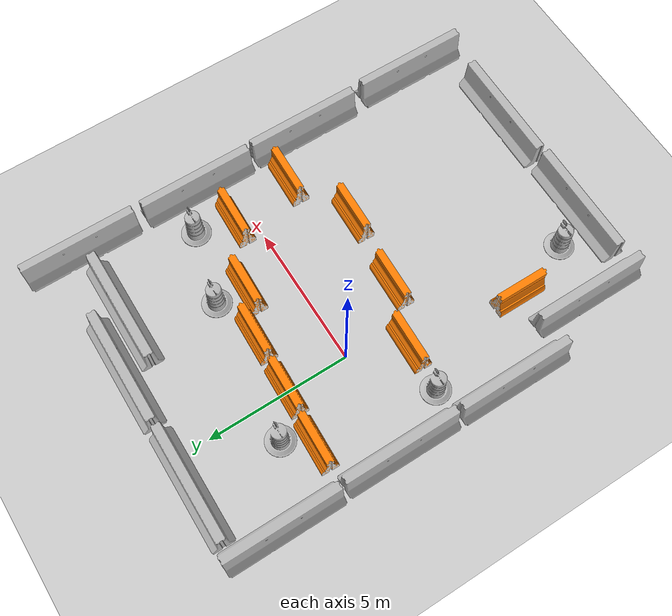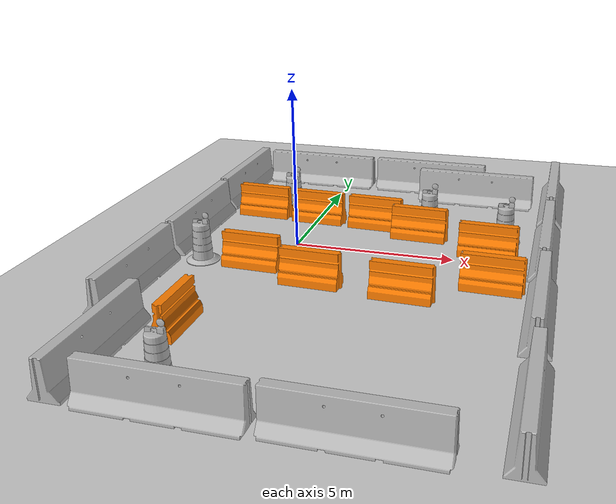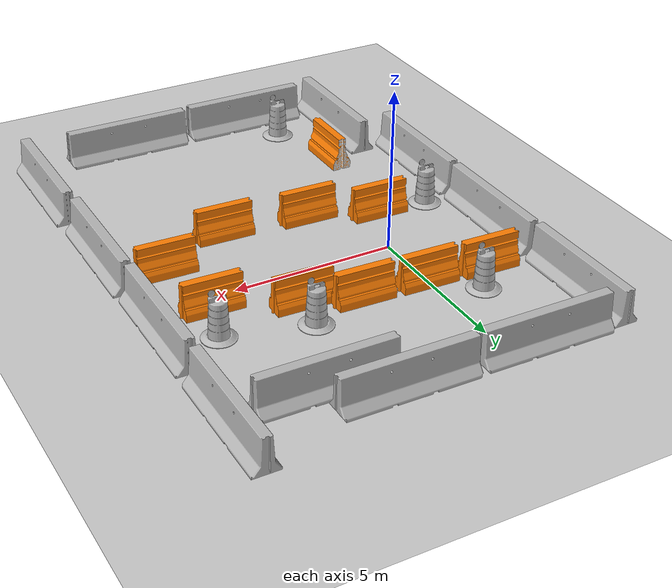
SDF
<sdf version="1.7">
 <world name="default">
  <model name="ground_plane">
   <static>1</static>
   <link name="link">
    <collision name="collision">
     <geometry><plane><normal>0 0 1</normal><size>100 100</size></plane></geometry>
     <surface><friction><ode><mu>100</mu><mu2>50</mu2></ode></friction></surface>
    </collision>
    <visual name="visual">
     <cast_shadows>0</cast_shadows>
     <geometry><plane><normal>0 0 1</normal><size>100 100</size></plane></geometry>
     <material>
      <script><uri>file://media/materials/scripts/gazebo.material</uri><name>Gazebo/Grey</name></script>
     </material>
    </visual>
   </link>
  </model>
  <model name="jersey_barrier">
   <static>1</static>
   <link name="link">
    <visual name="visual">
     <geometry><mesh><uri>model://jersey_barrier/meshes/jersey_barrier.dae</uri></mesh></geometry>
    </visual>
    <collision name="upright">
     <pose>0 0 0.5715 0 -0 0</pose>
     <geometry><box><size>4.06542 0.3063 1.143</size></box></geometry>
    </collision>
    <collision name="base">
     <pose>0 0 0.032258 0 -0 0</pose>
     <geometry><box><size>4.06542 0.8107 0.064516</size></box></geometry>
    </collision>
    <collision name="base2">
     <pose>0 0 0.1 0 -0 0</pose>
     <geometry><box><size>4.06542 0.65 0.1</size></box></geometry>
    </collision>
    <collision name="base3">
     <pose>0 0 0.2 0 -0 0</pose>
     <geometry><box><size>4.06542 0.5 0.1</size></box></geometry>
    </collision>
    <collision name="left-angle">
     <pose>0 -0.224 0.2401 0.9 -0 0</pose>
     <geometry><box><size>4.06542 0.5 0.064516</size></box></geometry>
    </collision>
    <collision name="right-angle">
     <pose>0 0.224 0.2401 -0.9 0 0</pose>
     <geometry><box><size>4.06542 0.5 0.064516</size></box></geometry>
    </collision>
   </link>
   <pose>-3.47167 0.268319 0 0 0 -1.57391</pose>
  </model>
  <model name="jersey_barrier_clone">
   <static>1</static>
   <link name="link">
    <visual name="visual">
     <geometry><mesh><uri>model://jersey_barrier/meshes/jersey_barrier.dae</uri></mesh></geometry>
    </visual>
    <collision name="upright">
     <pose>0 0 0.5715 0 -0 0</pose>
     <geometry><box><size>4.06542 0.3063 1.143</size></box></geometry>
    </collision>
    <collision name="base">
     <pose>0 0 0.032258 0 -0 0</pose>
     <geometry><box><size>4.06542 0.8107 0.064516</size></box></geometry>
    </collision>
    <collision name="base2">
     <pose>0 0 0.1 0 -0 0</pose>
     <geometry><box><size>4.06542 0.65 0.1</size></box></geometry>
    </collision>
    <collision name="base3">
     <pose>0 0 0.2 0 -0 0</pose>
     <geometry><box><size>4.06542 0.5 0.1</size></box></geometry>
    </collision>
    <collision name="left-angle">
     <pose>0 -0.224 0.2401 0.9 -0 0</pose>
     <geometry><box><size>4.06542 0.5 0.064516</size></box></geometry>
    </collision>
    <collision name="right-angle">
     <pose>0 0.224 0.2401 -0.9 0 0</pose>
     <geometry><box><size>4.06542 0.5 0.064516</size></box></geometry>
    </collision>
   </link>
   <pose>-3.51559 4.47458 0 0 0 -1.57391</pose>
  </model>
  <model name="jersey_barrier_clone_clone">
   <static>1</static>
   <link name="link">
    <visual name="visual">
     <geometry><mesh><uri>model://jersey_barrier/meshes/jersey_barrier.dae</uri></mesh></geometry>
    </visual>
    <collision name="upright">
     <pose>0 0 0.5715 0 -0 0</pose>
     <geometry><box><size>4.06542 0.3063 1.143</size></box></geometry>
    </collision>
    <collision name="base">
     <pose>0 0 0.032258 0 -0 0</pose>
     <geometry><box><size>4.06542 0.8107 0.064516</size></box></geometry>
    </collision>
    <collision name="base2">
     <pose>0 0 0.1 0 -0 0</pose>
     <geometry><box><size>4.06542 0.65 0.1</size></box></geometry>
    </collision>
    <collision name="base3">
     <pose>0 0 0.2 0 -0 0</pose>
     <geometry><box><size>4.06542 0.5 0.1</size></box></geometry>
    </collision>
    <collision name="left-angle">
     <pose>0 -0.224 0.2401 0.9 -0 0</pose>
     <geometry><box><size>4.06542 0.5 0.064516</size></box></geometry>
    </collision>
    <collision name="right-angle">
     <pose>0 0.224 0.2401 -0.9 0 0</pose>
     <geometry><box><size>4.06542 0.5 0.064516</size></box></geometry>
    </collision>
   </link>
   <pose>-3.49194 -3.94559 0 0 0 -1.57391</pose>
  </model>
  <model name="jersey_barrier_clone_clone_0">
   <static>1</static>
   <link name="link">
    <visual name="visual">
     <geometry><mesh><uri>model://jersey_barrier/meshes/jersey_barrier.dae</uri></mesh></geometry>
    </visual>
    <collision name="upright">
     <pose>0 0 0.5715 0 -0 0</pose>
     <geometry><box><size>4.06542 0.3063 1.143</size></box></geometry>
    </collision>
    <collision name="base">
     <pose>0 0 0.032258 0 -0 0</pose>
     <geometry><box><size>4.06542 0.8107 0.064516</size></box></geometry>
    </collision>
    <collision name="base2">
     <pose>0 0 0.1 0 -0 0</pose>
     <geometry><box><size>4.06542 0.65 0.1</size></box></geometry>
    </collision>
    <collision name="base3">
     <pose>0 0 0.2 0 -0 0</pose>
     <geometry><box><size>4.06542 0.5 0.1</size></box></geometry>
    </collision>
    <collision name="left-angle">
     <pose>0 -0.224 0.2401 0.9 -0 0</pose>
     <geometry><box><size>4.06542 0.5 0.064516</size></box></geometry>
    </collision>
    <collision name="right-angle">
     <pose>0 0.224 0.2401 -0.9 0 0</pose>
     <geometry><box><size>4.06542 0.5 0.064516</size></box></geometry>
    </collision>
   </link>
   <pose>-1.04259 6.17471 0 0 0 -0.010026</pose>
  </model>
  <model name="jersey_barrier_clone_clone_0_clone">
   <static>1</static>
   <link name="link">
    <visual name="visual">
     <geometry><mesh><uri>model://jersey_barrier/meshes/jersey_barrier.dae</uri></mesh></geometry>
    </visual>
    <collision name="upright">
     <pose>0 0 0.5715 0 -0 0</pose>
     <geometry><box><size>4.06542 0.3063 1.143</size></box></geometry>
    </collision>
    <collision name="base">
     <pose>0 0 0.032258 0 -0 0</pose>
     <geometry><box><size>4.06542 0.8107 0.064516</size></box></geometry>
    </collision>
    <collision name="base2">
     <pose>0 0 0.1 0 -0 0</pose>
     <geometry><box><size>4.06542 0.65 0.1</size></box></geometry>
    </collision>
    <collision name="base3">
     <pose>0 0 0.2 0 -0 0</pose>
     <geometry><box><size>4.06542 0.5 0.1</size></box></geometry>
    </collision>
    <collision name="left-angle">
     <pose>0 -0.224 0.2401 0.9 -0 0</pose>
     <geometry><box><size>4.06542 0.5 0.064516</size></box></geometry>
    </collision>
    <collision name="right-angle">
     <pose>0 0.224 0.2401 -0.9 0 0</pose>
     <geometry><box><size>4.06542 0.5 0.064516</size></box></geometry>
    </collision>
   </link>
   <pose>3.19196 6.17566 0 0 0 -0.010026</pose>
  </model>
  <model name="jersey_barrier_clone_clone_clone">
   <static>1</static>
   <link name="link">
    <visual name="visual">
     <geometry><mesh><uri>model://jersey_barrier/meshes/jersey_barrier.dae</uri></mesh></geometry>
    </visual>
    <collision name="upright">
     <pose>0 0 0.5715 0 -0 0</pose>
     <geometry><box><size>4.06542 0.3063 1.143</size></box></geometry>
    </collision>
    <collision name="base">
     <pose>0 0 0.032258 0 -0 0</pose>
     <geometry><box><size>4.06542 0.8107 0.064516</size></box></geometry>
    </collision>
    <collision name="base2">
     <pose>0 0 0.1 0 -0 0</pose>
     <geometry><box><size>4.06542 0.65 0.1</size></box></geometry>
    </collision>
    <collision name="base3">
     <pose>0 0 0.2 0 -0 0</pose>
     <geometry><box><size>4.06542 0.5 0.1</size></box></geometry>
    </collision>
    <collision name="left-angle">
     <pose>0 -0.224 0.2401 0.9 -0 0</pose>
     <geometry><box><size>4.06542 0.5 0.064516</size></box></geometry>
    </collision>
    <collision name="right-angle">
     <pose>0 0.224 0.2401 -0.9 0 0</pose>
     <geometry><box><size>4.06542 0.5 0.064516</size></box></geometry>
    </collision>
   </link>
   <pose>-2.45373 -7.67188 0 0 0 -1.57391</pose>
  </model>
  <model name="jersey_barrier_clone_clone_0_clone_0">
   <static>1</static>
   <link name="link">
    <visual name="visual">
     <geometry><mesh><uri>model://jersey_barrier/meshes/jersey_barrier.dae</uri></mesh></geometry>
    </visual>
    <collision name="upright">
     <pose>0 0 0.5715 0 -0 0</pose>
     <geometry><box><size>4.06542 0.3063 1.143</size></box></geometry>
    </collision>
    <collision name="base">
     <pose>0 0 0.032258 0 -0 0</pose>
     <geometry><box><size>4.06542 0.8107 0.064516</size></box></geometry>
    </collision>
    <collision name="base2">
     <pose>0 0 0.1 0 -0 0</pose>
     <geometry><box><size>4.06542 0.65 0.1</size></box></geometry>
    </collision>
    <collision name="base3">
     <pose>0 0 0.2 0 -0 0</pose>
     <geometry><box><size>4.06542 0.5 0.1</size></box></geometry>
    </collision>
    <collision name="left-angle">
     <pose>0 -0.224 0.2401 0.9 -0 0</pose>
     <geometry><box><size>4.06542 0.5 0.064516</size></box></geometry>
    </collision>
    <collision name="right-angle">
     <pose>0 0.224 0.2401 -0.9 0 0</pose>
     <geometry><box><size>4.06542 0.5 0.064516</size></box></geometry>
    </collision>
   </link>
   <pose>0.198187 -9.36273 0 0 0 -0.010026</pose>
  </model>
  <model name="jersey_barrier_clone_clone_0_clone_1">
   <static>1</static>
   <link name="link">
    <visual name="visual">
     <geometry><mesh><uri>model://jersey_barrier/meshes/jersey_barrier.dae</uri></mesh></geometry>
    </visual>
    <collision name="upright">
     <pose>0 0 0.5715 0 -0 0</pose>
     <geometry><box><size>4.06542 0.3063 1.143</size></box></geometry>
    </collision>
    <collision name="base">
     <pose>0 0 0.032258 0 -0 0</pose>
     <geometry><box><size>4.06542 0.8107 0.064516</size></box></geometry>
    </collision>
    <collision name="base2">
     <pose>0 0 0.1 0 -0 0</pose>
     <geometry><box><size>4.06542 0.65 0.1</size></box></geometry>
    </collision>
    <collision name="base3">
     <pose>0 0 0.2 0 -0 0</pose>
     <geometry><box><size>4.06542 0.5 0.1</size></box></geometry>
    </collision>
    <collision name="left-angle">
     <pose>0 -0.224 0.2401 0.9 -0 0</pose>
     <geometry><box><size>4.06542 0.5 0.064516</size></box></geometry>
    </collision>
    <collision name="right-angle">
     <pose>0 0.224 0.2401 -0.9 0 0</pose>
     <geometry><box><size>4.06542 0.5 0.064516</size></box></geometry>
    </collision>
   </link>
   <pose>4.45363 -9.33343 0 0 0 -0.010026</pose>
  </model>
  <model name="jersey_barrier_clone_clone_clone_0">
   <static>1</static>
   <link name="link">
    <visual name="visual">
     <geometry><mesh><uri>model://jersey_barrier/meshes/jersey_barrier.dae</uri></mesh></geometry>
    </visual>
    <collision name="upright">
     <pose>0 0 0.5715 0 -0 0</pose>
     <geometry><box><size>4.06542 0.3063 1.143</size></box></geometry>
    </collision>
    <collision name="base">
     <pose>0 0 0.032258 0 -0 0</pose>
     <geometry><box><size>4.06542 0.8107 0.064516</size></box></geometry>
    </collision>
    <collision name="base2">
     <pose>0 0 0.1 0 -0 0</pose>
     <geometry><box><size>4.06542 0.65 0.1</size></box></geometry>
    </collision>
    <collision name="base3">
     <pose>0 0 0.2 0 -0 0</pose>
     <geometry><box><size>4.06542 0.5 0.1</size></box></geometry>
    </collision>
    <collision name="left-angle">
     <pose>0 -0.224 0.2401 0.9 -0 0</pose>
     <geometry><box><size>4.06542 0.5 0.064516</size></box></geometry>
    </collision>
    <collision name="right-angle">
     <pose>0 0.224 0.2401 -0.9 0 0</pose>
     <geometry><box><size>4.06542 0.5 0.064516</size></box></geometry>
    </collision>
   </link>
   <pose>7.811 -7.65626 0 0 0 -1.57391</pose>
  </model>
  <model name="jersey_barrier_clone_clone_clone_1">
   <static>1</static>
   <link name="link">
    <visual name="visual">
     <geometry><mesh><uri>model://jersey_barrier/meshes/jersey_barrier.dae</uri></mesh></geometry>
    </visual>
    <collision name="upright">
     <pose>0 0 0.5715 0 -0 0</pose>
     <geometry><box><size>4.06542 0.3063 1.143</size></box></geometry>
    </collision>
    <collision name="base">
     <pose>0 0 0.032258 0 -0 0</pose>
     <geometry><box><size>4.06542 0.8107 0.064516</size></box></geometry>
    </collision>
    <collision name="base2">
     <pose>0 0 0.1 0 -0 0</pose>
     <geometry><box><size>4.06542 0.65 0.1</size></box></geometry>
    </collision>
    <collision name="base3">
     <pose>0 0 0.2 0 -0 0</pose>
     <geometry><box><size>4.06542 0.5 0.1</size></box></geometry>
    </collision>
    <collision name="left-angle">
     <pose>0 -0.224 0.2401 0.9 -0 0</pose>
     <geometry><box><size>4.06542 0.5 0.064516</size></box></geometry>
    </collision>
    <collision name="right-angle">
     <pose>0 0.224 0.2401 -0.9 0 0</pose>
     <geometry><box><size>4.06542 0.5 0.064516</size></box></geometry>
    </collision>
   </link>
   <pose>7.7441 -3.2014 0 0 0 -1.57391</pose>
  </model>
  <model name="jersey_barrier_clone_clone_clone_2">
   <static>1</static>
   <link name="link">
    <visual name="visual">
     <geometry><mesh><uri>model://jersey_barrier/meshes/jersey_barrier.dae</uri></mesh></geometry>
    </visual>
    <collision name="upright">
     <pose>0 0 0.5715 0 -0 0</pose>
     <geometry><box><size>4.06542 0.3063 1.143</size></box></geometry>
    </collision>
    <collision name="base">
     <pose>0 0 0.032258 0 -0 0</pose>
     <geometry><box><size>4.06542 0.8107 0.064516</size></box></geometry>
    </collision>
    <collision name="base2">
     <pose>0 0 0.1 0 -0 0</pose>
     <geometry><box><size>4.06542 0.65 0.1</size></box></geometry>
    </collision>
    <collision name="base3">
     <pose>0 0 0.2 0 -0 0</pose>
     <geometry><box><size>4.06542 0.5 0.1</size></box></geometry>
    </collision>
    <collision name="left-angle">
     <pose>0 -0.224 0.2401 0.9 -0 0</pose>
     <geometry><box><size>4.06542 0.5 0.064516</size></box></geometry>
    </collision>
    <collision name="right-angle">
     <pose>0 0.224 0.2401 -0.9 0 0</pose>
     <geometry><box><size>4.06542 0.5 0.064516</size></box></geometry>
    </collision>
   </link>
   <pose>7.69922 1.01734 0 0 0 -1.57391</pose>
  </model>
  <model name="jersey_barrier_clone_clone_clone_3">
   <static>1</static>
   <link name="link">
    <visual name="visual">
     <geometry><mesh><uri>model://jersey_barrier/meshes/jersey_barrier.dae</uri></mesh></geometry>
    </visual>
    <collision name="upright">
     <pose>0 0 0.5715 0 -0 0</pose>
     <geometry><box><size>4.06542 0.3063 1.143</size></box></geometry>
    </collision>
    <collision name="base">
     <pose>0 0 0.032258 0 -0 0</pose>
     <geometry><box><size>4.06542 0.8107 0.064516</size></box></geometry>
    </collision>
    <collision name="base2">
     <pose>0 0 0.1 0 -0 0</pose>
     <geometry><box><size>4.06542 0.65 0.1</size></box></geometry>
    </collision>
    <collision name="base3">
     <pose>0 0 0.2 0 -0 0</pose>
     <geometry><box><size>4.06542 0.5 0.1</size></box></geometry>
    </collision>
    <collision name="left-angle">
     <pose>0 -0.224 0.2401 0.9 -0 0</pose>
     <geometry><box><size>4.06542 0.5 0.064516</size></box></geometry>
    </collision>
    <collision name="right-angle">
     <pose>0 0.224 0.2401 -0.9 0 0</pose>
     <geometry><box><size>4.06542 0.5 0.064516</size></box></geometry>
    </collision>
   </link>
   <pose>7.72014 5.3794 0 0 0 -1.57391</pose>
  </model>
  <model name="jersey_barrier_clone_clone_0_clone_clone">
   <static>1</static>
   <link name="link">
    <visual name="visual">
     <geometry><mesh><uri>model://jersey_barrier/meshes/jersey_barrier.dae</uri></mesh></geometry>
    </visual>
    <collision name="upright">
     <pose>0 0 0.5715 0 -0 0</pose>
     <geometry><box><size>4.06542 0.3063 1.143</size></box></geometry>
    </collision>
    <collision name="base">
     <pose>0 0 0.032258 0 -0 0</pose>
     <geometry><box><size>4.06542 0.8107 0.064516</size></box></geometry>
    </collision>
    <collision name="base2">
     <pose>0 0 0.1 0 -0 0</pose>
     <geometry><box><size>4.06542 0.65 0.1</size></box></geometry>
    </collision>
    <collision name="base3">
     <pose>0 0 0.2 0 -0 0</pose>
     <geometry><box><size>4.06542 0.5 0.1</size></box></geometry>
    </collision>
    <collision name="left-angle">
     <pose>0 -0.224 0.2401 0.9 -0 0</pose>
     <geometry><box><size>4.06542 0.5 0.064516</size></box></geometry>
    </collision>
    <collision name="right-angle">
     <pose>0 0.224 0.2401 -0.9 0 0</pose>
     <geometry><box><size>4.06542 0.5 0.064516</size></box></geometry>
    </collision>
   </link>
   <pose>5.00455 5.26458 0 0 0 -0.010026</pose>
  </model>
  <model name="Construction Barrel">
   <link name="link">
    <inertial>
     <pose>0 0 0.4 0 -0 0</pose>
     <mass>500</mass>
     <inertia><ixx>51.2096</ixx><iyy>51.2096</iyy><izz>25</izz><ixy>0</ixy><ixz>0</ixz><iyz>0</iyz></inertia>
    </inertial>
    <collision name="collision">
     <geometry><mesh><uri>model://construction_barrel/meshes/construction_barrel.dae</uri></mesh></geometry>
    </collision>
    <visual name="visual">
     <geometry><mesh><uri>model://construction_barrel/meshes/construction_barrel.dae</uri></mesh></geometry>
    </visual>
   </link>
   <pose>3.79974 2.53707 -1e-06 4e-06 -2e-06 -4.8e-05</pose>
  </model>
  <model name="Construction Barrel_0">
   <link name="link">
    <inertial>
     <pose>0 0 0.4 0 -0 0</pose>
     <mass>500</mass>
     <inertia><ixx>51.2096</ixx><iyy>51.2096</iyy><izz>25</izz><ixy>0</ixy><ixz>0</ixz><iyz>0</iyz></inertia>
    </inertial>
    <collision name="collision">
     <geometry><mesh><uri>model://construction_barrel/meshes/construction_barrel.dae</uri></mesh></geometry>
    </collision>
    <visual name="visual">
     <geometry><mesh><uri>model://construction_barrel/meshes/construction_barrel.dae</uri></mesh></geometry>
    </visual>
   </link>
   <pose>-1.20188 3.15265 -2e-06 1e-06 8e-06 -4.6e-05</pose>
  </model>
  <model name="Construction Barrel_1">
   <link name="link">
    <inertial>
     <pose>0 0 0.4 0 -0 0</pose>
     <mass>500</mass>
     <inertia><ixx>51.2096</ixx><iyy>51.2096</iyy><izz>25</izz><ixy>0</ixy><ixz>0</ixz><iyz>0</iyz></inertia>
    </inertial>
    <collision name="collision">
     <geometry><mesh><uri>model://construction_barrel/meshes/construction_barrel.dae</uri></mesh></geometry>
    </collision>
    <visual name="visual">
     <geometry><mesh><uri>model://construction_barrel/meshes/construction_barrel.dae</uri></mesh></geometry>
    </visual>
   </link>
   <pose>-0.508981 -8.115 0 0 0 -5.5e-05</pose>
  </model>
  <model name="Construction Barrel_2">
   <link name="link">
    <inertial>
     <pose>0 0 0.4 0 -0 0</pose>
     <mass>500</mass>
     <inertia><ixx>51.2096</ixx><iyy>51.2096</iyy><izz>25</izz><ixy>0</ixy><ixz>0</ixz><iyz>0</iyz></inertia>
    </inertial>
    <collision name="collision">
     <geometry><mesh><uri>model://construction_barrel/meshes/construction_barrel.dae</uri></mesh></geometry>
    </collision>
    <visual name="visual">
     <geometry><mesh><uri>model://construction_barrel/meshes/construction_barrel.dae</uri></mesh></geometry>
    </visual>
   </link>
   <pose>6.37128 1.85909 -1e-06 4e-06 -2e-06 -4.8e-05</pose>
  </model>
  <model name="Construction Barrel_4">
   <link name="link">
    <inertial>
     <pose>0 0 0.4 0 -0 0</pose>
     <mass>500</mass>
     <inertia><ixx>51.2096</ixx><iyy>51.2096</iyy><izz>25</izz><ixy>0</ixy><ixz>0</ixz><iyz>0</iyz></inertia>
    </inertial>
    <collision name="collision">
     <geometry><mesh><uri>model://construction_barrel/meshes/construction_barrel.dae</uri></mesh></geometry>
    </collision>
    <visual name="visual">
     <geometry><mesh><uri>model://construction_barrel/meshes/construction_barrel.dae</uri></mesh></geometry>
    </visual>
   </link>
   <pose>-2.40943 -1.80432 -1e-06 4e-06 -2e-06 -4.6e-05</pose>
  </model>
  <model name="drc_practice_organge_jersey_barrier">
   <static>1</static>
   <link name="link">
    <visual name="visual">
     <geometry>
      <mesh><uri>model://drc_practice_orange_jersey_barrier/meshes/jersey_barrier.dae</uri></mesh>
     </geometry>
    </visual>
    <collision name="collision">
     <geometry>
      <mesh><uri>model://drc_practice_orange_jersey_barrier/meshes/jersey_barrier.dae</uri></mesh>
     </geometry>
    </collision>
   </link>
   <pose>-1.23669 -5.83097 0 0 -0 0</pose>
  </model>
  <model name="drc_practice_organge_jersey_barrier_0">
   <static>1</static>
   <link name="link">
    <visual name="visual">
     <geometry>
      <mesh><uri>model://drc_practice_orange_jersey_barrier/meshes/jersey_barrier.dae</uri></mesh>
     </geometry>
    </visual>
    <collision name="collision">
     <geometry>
      <mesh><uri>model://drc_practice_orange_jersey_barrier/meshes/jersey_barrier.dae</uri></mesh>
     </geometry>
    </collision>
   </link>
   <pose>-1.93074 2.31248 0 0 -0 1.53957</pose>
  </model>
  <model name="drc_practice_organge_jersey_barrier_0_clone">
   <static>1</static>
   <link name="link">
    <visual name="visual">
     <geometry>
      <mesh><uri>model://drc_practice_orange_jersey_barrier/meshes/jersey_barrier.dae</uri></mesh>
     </geometry>
    </visual>
    <collision name="collision">
     <geometry>
      <mesh><uri>model://drc_practice_orange_jersey_barrier/meshes/jersey_barrier.dae</uri></mesh>
     </geometry>
    </collision>
   </link>
   <pose>6.33881 -1.73571 0 0 -0 1.53957</pose>
  </model>
  <model name="drc_practice_organge_jersey_barrier_0_clone_0">
   <static>1</static>
   <link name="link">
    <visual name="visual">
     <geometry>
      <mesh><uri>model://drc_practice_orange_jersey_barrier/meshes/jersey_barrier.dae</uri></mesh>
     </geometry>
    </visual>
    <collision name="collision">
     <geometry>
      <mesh><uri>model://drc_practice_orange_jersey_barrier/meshes/jersey_barrier.dae</uri></mesh>
     </geometry>
    </collision>
   </link>
   <pose>0.040701 2.17405 0 0 -0 1.53957</pose>
  </model>
  <model name="drc_practice_organge_jersey_barrier_0_clone_1">
   <static>1</static>
   <link name="link">
    <visual name="visual">
     <geometry>
      <mesh><uri>model://drc_practice_orange_jersey_barrier/meshes/jersey_barrier.dae</uri></mesh>
     </geometry>
    </visual>
    <collision name="collision">
     <geometry>
      <mesh><uri>model://drc_practice_orange_jersey_barrier/meshes/jersey_barrier.dae</uri></mesh>
     </geometry>
    </collision>
   </link>
   <pose>2.0579 2.08051 0 0 -0 1.53957</pose>
  </model>
  <model name="drc_practice_organge_jersey_barrier_0_clone_2">
   <static>1</static>
   <link name="link">
    <visual name="visual">
     <geometry>
      <mesh><uri>model://drc_practice_orange_jersey_barrier/meshes/jersey_barrier.dae</uri></mesh>
     </geometry>
    </visual>
    <collision name="collision">
     <geometry>
      <mesh><uri>model://drc_practice_orange_jersey_barrier/meshes/jersey_barrier.dae</uri></mesh>
     </geometry>
    </collision>
   </link>
   <pose>-0.767384 -1.88007 0 0 -0 1.53957</pose>
  </model>
  <model name="drc_practice_organge_jersey_barrier_0_clone_2_clone">
   <static>1</static>
   <link name="link">
    <visual name="visual">
     <geometry>
      <mesh><uri>model://drc_practice_orange_jersey_barrier/meshes/jersey_barrier.dae</uri></mesh>
     </geometry>
    </visual>
    <collision name="collision">
     <geometry>
      <mesh><uri>model://drc_practice_orange_jersey_barrier/meshes/jersey_barrier.dae</uri></mesh>
     </geometry>
    </collision>
   </link>
   <pose>1.29352 -2.61099 0 0 -0 1.53957</pose>
  </model>
  <model name="drc_practice_organge_jersey_barrier_0_clone_2_clone_0">
   <static>1</static>
   <link name="link">
    <visual name="visual">
     <geometry>
      <mesh><uri>model://drc_practice_orange_jersey_barrier/meshes/jersey_barrier.dae</uri></mesh>
     </geometry>
    </visual>
    <collision name="collision">
     <geometry>
      <mesh><uri>model://drc_practice_orange_jersey_barrier/meshes/jersey_barrier.dae</uri></mesh>
     </geometry>
    </collision>
   </link>
   <pose>3.99964 -2.84764 0 0 -0 1.53957</pose>
  </model>
  <model name="drc_practice_organge_jersey_barrier_0_clone_2_clone_1">
   <static>1</static>
   <link name="link">
    <visual name="visual">
     <geometry>
      <mesh><uri>model://drc_practice_orange_jersey_barrier/meshes/jersey_barrier.dae</uri></mesh>
     </geometry>
    </visual>
    <collision name="collision">
     <geometry>
      <mesh><uri>model://drc_practice_orange_jersey_barrier/meshes/jersey_barrier.dae</uri></mesh>
     </geometry>
    </collision>
   </link>
   <pose>5.96325 0.569342 0 0 -0 1.53957</pose>
  </model>
  <model name="drc_practice_organge_jersey_barrier_0_clone_2_clone_2">
   <static>1</static>
   <link name="link">
    <visual name="visual">
     <geometry>
      <mesh><uri>model://drc_practice_orange_jersey_barrier/meshes/jersey_barrier.dae</uri></mesh>
     </geometry>
    </visual>
    <collision name="collision">
     <geometry>
      <mesh><uri>model://drc_practice_orange_jersey_barrier/meshes/jersey_barrier.dae</uri></mesh>
     </geometry>
    </collision>
   </link>
   <pose>3.65452 1.4883 0 0 -0 1.53957</pose>
  </model>
 </world>
</sdf>
